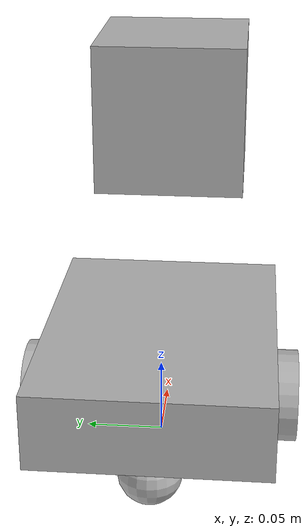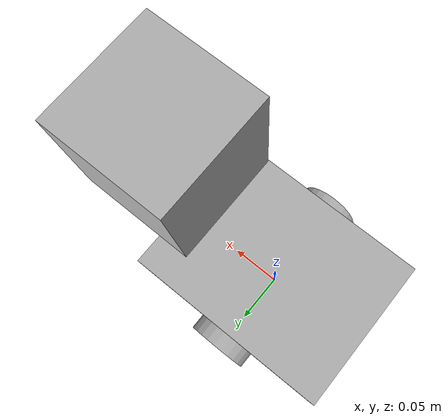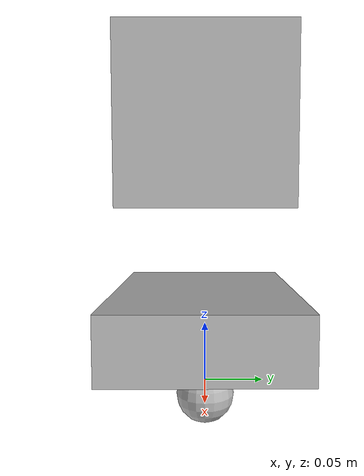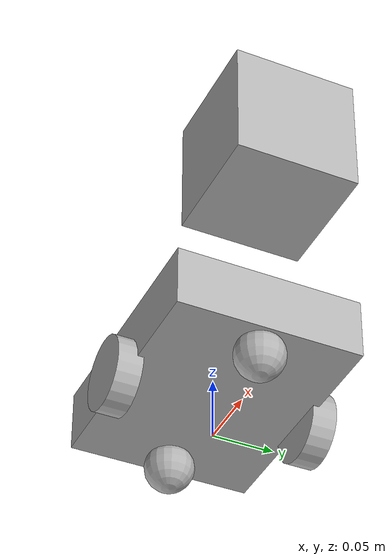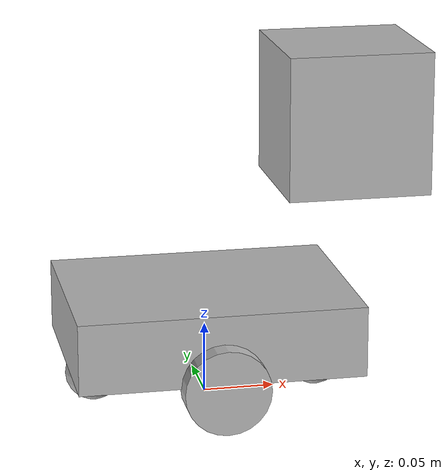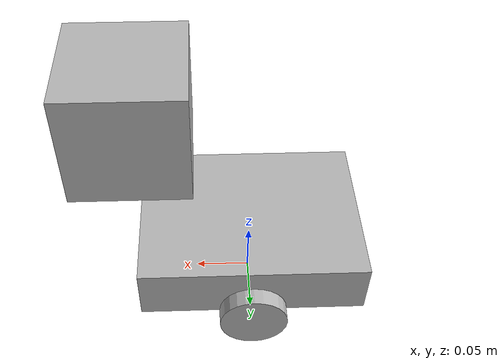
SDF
<?xml version='1.0' encoding='utf-8'?>
<sdf version="1.6">
  <model name="square_bot">
    <static>1</static>
    <link name="base_link">
      <kinematic>true</kinematic>
      <pose>0.0 0.0 0.0 0.0 0.0 0.0</pose>
      <inertial>
        <mass>1.0</mass>
        <inertia>
          <ixx>0.001</ixx>
          <iyy>0.001</iyy>
          <izz>0.001</izz>
          <ixy>0.0</ixy>
          <ixz>0.0</ixz>
          <iyz>0.0</iyz>
        </inertia>
        <pose>0 0 0.055 0 0 0</pose>
      </inertial>
      <visual name="base_link_visual">
        <pose>0 0 0.055 0 0 0</pose>
        <geometry>
          <box>
            <size>0.20 0.15 0.05</size>
          </box>
        </geometry>
      </visual>
      <collision name="base_link_collision">
        <pose>0 0 0 0 0 0</pose>
        <geometry>
          <box>
            <size>0.01 0.01 0.01</size>
          </box>
        </geometry>
      </collision>
    </link>
    <link name="left_wheel_link">
      <pose>0.0 0.08 0.03 0.0 -0.0 0.0</pose>
      <inertial>
        <mass>1.0</mass>
        <inertia>
          <ixx>0.001</ixx>
          <iyy>0.001</iyy>
          <izz>0.001</izz>
          <ixy>0.0</ixy>
          <ixz>0.0</ixz>
          <iyz>0.0</iyz>
        </inertia>
      </inertial>
      <visual name="left_wheel_link_visual">
        <pose>0 0 0 1.5708 0 0</pose>
        <geometry>
          <cylinder>
            <radius>0.03</radius>
            <length>0.02</length>
          </cylinder>
        </geometry>
      </visual>
      <collision name="left_wheel_link_collision">
        <pose>0 0 0 1.5708 0 0</pose>
        <geometry>
          <cylinder>
            <radius>0.03</radius>
            <length>0.02</length>
          </cylinder>
        </geometry>
      </collision>
    </link>
    <link name="right_wheel_link">
      <pose>0.0 -0.08 0.03 0.0 -0.0 0.0</pose>
      <inertial>
        <mass>1.0</mass>
        <inertia>
          <ixx>0.001</ixx>
          <iyy>0.001</iyy>
          <izz>0.001</izz>
          <ixy>0.0</ixy>
          <ixz>0.0</ixz>
          <iyz>0.0</iyz>
        </inertia>
      </inertial>
      <visual name="right_wheel_link_visual">
        <pose>0 0 0 1.5708 0 0</pose>
        <geometry>
          <cylinder>
            <radius>0.03</radius>
            <length>0.02</length>
          </cylinder>
        </geometry>
      </visual>
      <collision name="right_wheel_link_collision">
        <pose>0 0 0 1.5708 0 0</pose>
        <geometry>
          <cylinder>
            <radius>0.03</radius>
            <length>0.02</length>
          </cylinder>
        </geometry>
      </collision>
    </link>
    <link name="camera_link">
      <pose>0.1 0.0 0.2 0.0 -0.0 0.0</pose>
      <inertial>
        <mass>1.0</mass>
        <inertia>
          <ixx>0.00041666666666666675</ixx>
          <iyy>0.00041666666666666675</iyy>
          <izz>0.00041666666666666675</izz>
          <ixy>0.0</ixy>
          <ixz>0.0</ixz>
          <iyz>0.0</iyz>
        </inertia>
      </inertial>
      <visual name="camera_link_visual">
        <pose>0 0 0 0 0 0</pose>
        <geometry>
          <box>
            <size>0.05 0.05 0.05</size>
          </box>
        </geometry>
      </visual>
      <collision name="camera_link_collision">
        <pose>0 0 0 0 0 0</pose>
        <geometry>
          <box>
            <size>0.05 0.05 0.05</size>
          </box>
        </geometry>
      </collision>
    <sensor type="camera" name="camera_sensor">
        <pose>0 0 0 0 0 0</pose>
        <always_on>1</always_on>
        <update_rate>10.0</update_rate>
        <camera name="head">
          <horizontal_fov>1.3962634</horizontal_fov>
          <clip>
            <near>0.05</near>
            <far>2.0</far>
          </clip>
          <image>
            <width>640</width>
            <height>480</height>
            <format>R8G8B8</format>
          </image>
        </camera>

    <plugin name="gazebo_ros_camera" filename="libgazebo_ros_camera.so">
          <alwaysOn>true</alwaysOn>
          <updateRate>0.0</updateRate>
          <cameraName>square_bot/camera_sensor</cameraName>
          <imageTopicName>/square_bot/camera_sensor/image_raw</imageTopicName>
          <cameraInfoTopicName>/square_bot/camera_sensor/camera_info</cameraInfoTopicName>
          <frameName>square_bot/camera_sensor</frameName>
          <hackBaseline>0.07</hackBaseline>
          <distortionK1>0.0</distortionK1>
          <distortionK2>0.0</distortionK2>
          <distortionK3>0.0</distortionK3>
          <distortionT1>0.0</distortionT1>
          <distortionT2>0.0</distortionT2>
        </plugin>
      </sensor>
    </link>
    <link name="camera_optical_frame">
      <pose>0.1 0.0 0.2 0.0 -0.0 0.0</pose>
      <inertial>
        <mass>1.0</mass>
        <inertia>
          <ixx>0.001</ixx>
          <iyy>0.001</iyy>
          <izz>0.001</izz>
          <ixy>0.0</ixy>
          <ixz>0.0</ixz>
          <iyz>0.0</iyz>
        </inertia>
      </inertial>
      <visual name="camera_optical_frame_visual">
        <pose>0 0 0 0 0 0</pose>
        <geometry>
          <box>
            <size>0.1 0.1 0.1</size>
          </box>
        </geometry>
      </visual>
      <collision name="camera_optical_frame_collision">
        <pose>0 0 0 0 0 0</pose>
        <geometry>
          <box>
            <size>0.1 0.1 0.1</size>
          </box>
        </geometry>
      </collision>
    </link>
    <link name="caster_link">
      <pose>-0.08 0.0 0.02 0.0 -0.0 0.0</pose>
      <inertial>
        <mass>1.0</mass>
        <inertia>
          <ixx>0.001</ixx>
          <iyy>0.001</iyy>
          <izz>0.001</izz>
          <ixy>0.0</ixy>
          <ixz>0.0</ixz>
          <iyz>0.0</iyz>
        </inertia>
      </inertial>
      <visual name="caster_link_visual">
        <pose>0 0 0 0 0 0</pose>
        <geometry>
          <sphere>
            <radius>0.02</radius>
          </sphere>
        </geometry>
      </visual>
      <collision name="caster_link_collision">
        <pose>0 0 0 0 0 0</pose>
        <geometry>
          <sphere>
            <radius>0.02</radius>
          </sphere>
        </geometry>
      </collision>
    </link>
    <link name="caster_link2">
      <pose>0.08 0.0 0.02 0.0 -0.0 0.0</pose>
      <inertial>
        <mass>1.0</mass>
        <inertia>
          <ixx>0.001</ixx>
          <iyy>0.001</iyy>
          <izz>0.001</izz>
          <ixy>0.0</ixy>
          <ixz>0.0</ixz>
          <iyz>0.0</iyz>
        </inertia>
      </inertial>
      <visual name="caster_link2_visual">
        <pose>0 0 0 0 0 0</pose>
        <geometry>
          <sphere>
            <radius>0.02</radius>
          </sphere>
        </geometry>
      </visual>
      <collision name="caster_link2_collision">
        <pose>0 0 0 0 0 0</pose>
        <geometry>
          <sphere>
            <radius>0.02</radius>
          </sphere>
        </geometry>
      </collision>
    </link>
    <joint name="left_wheel_joint" type="revolute">
      <parent>base_link</parent>
      <child>left_wheel_link</child>
      <pose>0.0 0.08 0.03 0.0 -0.0 0.0</pose>
      <axis>
        <xyz>0 1 0</xyz>
      </axis>
    </joint>
    <joint name="right_wheel_joint" type="revolute">
      <parent>base_link</parent>
      <child>right_wheel_link</child>
      <pose>0.0 -0.08 0.03 0.0 -0.0 0.0</pose>
      <axis>
        <xyz>0 1 0</xyz>
      </axis>
    </joint>
    <joint name="camera_optical_joint" type="fixed">
      <parent>camera_link</parent>
      <child>camera_optical_frame</child>
      <pose>0.1 0.0 0.2 0.0 -0.0 0.0</pose>
    </joint>
    <joint name="base_to_camera" type="fixed">
      <parent>base_link</parent>
      <child>camera_link</child>
      <pose>0.1 0.0 0.2 0.0 -0.0 0.0</pose>
    </joint>
    <joint name="caster_joint" type="fixed">
      <parent>base_link</parent>
      <child>caster_link</child>
      <pose>-0.08 0.0 0.02 0.0 -0.0 0.0</pose>
    </joint>
    <joint name="caster_joint2" type="fixed">
      <parent>base_link</parent>
      <child>caster_link2</child>
      <pose>0.08 0.0 0.02 0.0 -0.0 0.0</pose>
    </joint>
  </model>
</sdf>
